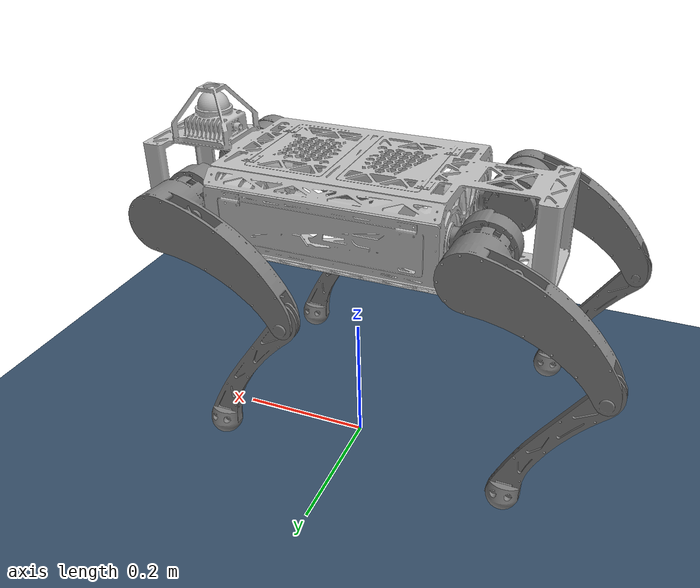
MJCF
<mujoco model="dog_v2_2_4">
  <compiler angle="radian" autolimits="true" eulerseq="zyx" meshdir="meshes"/>
  <option gravity='0 0 -9.81'>
    <flag frictionloss="enable"/>
  </option>
  <size njmax="500" nconmax="100" />

  <default>
    <joint limited='true'/>
    <motor ctrllimited='true'/>
    <geom condim='1' contype="1" conaffinity="0" friction='0.6 0.2 0.2'/>
    <default class='leg_joint_param'>
      <joint damping="0.5" frictionloss="0.01" armature="0.01"/>
    </default>
    <default class="foot_collision">
      <geom type="sphere" size="0.02" condim="6" friction="10.0 0.05 0.01"/>
    </default>
  </default>

  <asset>
    <hfield name="terrain" nrow="100" ncol="100" size="50 50 0.5 0.1"/>
    <mesh name="base_link" file="base_link.STL"/>
    <mesh name="LF_HipA_link" file="LF_HipA_link.STL"/>
    <mesh name="LF_HipF_link" file="LF_HipF_link.STL"/>
    <mesh name="LF_Knee_link" file="LF_Knee_link.STL"/>
    <mesh name="LF_Foot_link" file="LF_Foot_link.STL"/>
    <mesh name="LR_HipA_link" file="LR_HipA_link.STL"/>
    <mesh name="LR_HipF_link" file="LR_HipF_link.STL"/>
    <mesh name="LR_Knee_link" file="LR_Knee_link.STL"/>
    <mesh name="LR_Foot_link" file="LR_Foot_link.STL"/>
    <mesh name="RF_HipA_link" file="RF_HipA_link.STL"/>
    <mesh name="RF_HipF_link" file="RF_HipF_link.STL"/>
    <mesh name="RF_Knee_link" file="RF_Knee_link.STL"/>
    <mesh name="RF_Foot_link" file="RF_Foot_link.STL"/>
    <mesh name="RR_HipA_link" file="RR_HipA_link.STL"/>
    <mesh name="RR_HipF_link" file="RR_HipF_link.STL"/>
    <mesh name="RR_Knee_link" file="RR_Knee_link.STL"/>
    <mesh name="RR_Foot_link" file="RR_Foot_link.STL"/>
  </asset>

  <worldbody>
    <light directional="true" diffuse=".4 .4 .4" pos="0 0 5.0" dir="0 0 -1"/>
    <geom name="floor" type="plane" size="50 50 0.1" condim="3" friction="1.0 0.2 0.2" conaffinity="1" rgba="0.2 0.3 0.4 1"/>

    <body name="base_link" pos="0 0 0.35">
      <freejoint name="floating_base"/>
      <inertial pos="0.003073 -0.000011 0.058211" mass="5.276437" fullinertia="0.032842099924 0.103762167556 0.116538404566 0.00003336928 -0.007254554244 0.00003335365"/>

      <site name='imu' size='0.01' pos='0 0 0'/>
      <geom type="mesh" mesh="base_link" rgba="0.75 0.75 0.75 1" contype="0" conaffinity="0" group="1"/>

      <body name="LF_HipA_link" pos="0.16 0.0675 0.063" quat="0.5 0.5 0.5 0.5">
        <inertial pos="0.002621 0.000052 0.046852" mass="0.452382" fullinertia="0.00055866874 0.000347032635 0.000308951038 0.000000341744 -0.000000708495 -0.000000091476"/>
        <joint name="LF_HipA_joint" axis="0 0 1" range="-0.7853982 0.7853982" class="leg_joint_param"/>
        <geom type="mesh" mesh="LF_HipA_link"/>

        <body name="LF_HipF_link" pos="0.018 0 0.048" quat="0.707 0 0.707 0">
          <inertial pos="0.033261 -0.016881 0.050217" mass="0.779164" fullinertia="0.001597433226 0.003268376129 0.004330433943 0.001505087455 -0.000442930553 0.000224661879"/>
          <joint name="LF_HipF_joint" axis="0 0 1" range="-1.2217658 0.8726683" class="leg_joint_param"/>
          <geom type="mesh" mesh="LF_HipF_link"/>

          <body name="LF_Knee_link" pos="0.1707 -0.1222 0.05">
            <inertial pos="-0.055107 -0.080197 0.016515" mass="0.121558" fullinertia="0.000549292448 0.000223695708 0.000769619177 -0.000333360171 -0.000000107893 -0.000000188213"/>
            <joint name="LF_Knee_joint" axis="0 0 1" range="-1.2217299 0.69813" class="leg_joint_param"/>
            <geom type="mesh" mesh="LF_Knee_link"/>
            <site name="LF_foot_site" pos="-0.11 -0.19 0.016" size="0.01"/>
            <geom name="LF_foot_visual" type="mesh" mesh="LF_Foot_link" pos="-0.11 -0.19 0.016" quat="0 0 0.707 0.707"
                  contype="0" conaffinity="0" group="1"/>
            <geom name="LF_foot_collision" class="foot_collision" pos="-0.11 -0.19 0.016" rgba="0 0 0 0"/>
          </body>
        </body>
      </body>

      <body name="LR_HipA_link" pos="-0.16 0.0675 0.063" quat="0.5 0.5 -0.5 -0.5">
        <inertial pos="-0.002621 -0.000052 0.046852" mass="0.452382" fullinertia="0.00055866874 0.000347032635 0.000308951038 0.000000341744 0.000000708495 0.000000091476"/>
        <joint name="LR_HipA_joint" axis="0 0 1" range="-0.7853982 0.7853982" class="leg_joint_param"/>
        <geom type="mesh" mesh="LR_HipA_link"/>

        <body name="LR_HipF_link" pos="-0.018 0 0.048" quat="0.707 0 -0.707 0">
          <inertial pos="0.03326 -0.016881 0.050217" mass="0.779164" fullinertia="0.001597433226 0.003268376129 0.004330433943 0.001505087455 -0.000442930553 0.000224661879"/>
          <joint name="LR_HipF_joint" axis="0 0 1" range="-1.2217305 0.8726683" class="leg_joint_param"/>
          <geom type="mesh" mesh="LR_HipF_link"/>

          <body name="LR_Knee_link" pos="0.1707 -0.1222 0.05">
            <inertial pos="-0.055107 -0.080197 0.016515" mass="0.121558" fullinertia="0.000549292448 0.000223695708 0.000769619177 -0.000333360171 -0.000000107893 -0.000000188213"/>
            <joint name="LR_Knee_joint" axis="0 0 1" range="-1.2217299 0.69813" class="leg_joint_param"/>
            <geom type="mesh" mesh="LR_Knee_link"/>
            <site name="LR_foot_site" pos="-0.11 -0.19 0.016" size="0.01"/>
            <geom name="LR_foot_visual" type="mesh" mesh="LR_Foot_link" pos="-0.11 -0.19 0.016" quat="0 0 -0.707 -0.707"
                  contype="0" conaffinity="0" group="1"/>
            <geom name="LR_foot_collision" class="foot_collision" pos="-0.11 -0.19 0.016" rgba="0 0 0 0"/>
          </body>
        </body>
      </body>

      <body name="RF_HipA_link" pos="0.16 -0.0675 0.063" quat="0.5 0.5 0.5 0.5">
        <inertial pos="-0.002621 -0.000052 0.046852" mass="0.452382" fullinertia="0.00055866874 0.000347032635 0.000308951038 0.000000341744 0.000000708495 0.000000091476"/>
        <joint name="RF_HipA_joint" axis="0 0 1" range="-0.7853982 0.7853982" class="leg_joint_param"/>
        <geom type="mesh" mesh="RF_HipA_link"/>

        <body name="RF_HipF_link" pos="-0.018 0 0.048" quat="0.707 0 -0.707 0">
          <inertial pos="-0.033247 -0.016939 0.050217" mass="0.779164" fullinertia="0.001595827327 0.00326915934 0.004329611254 -0.001503634909 0.000443182676 0.000223603548"/>
          <joint name="RF_HipF_joint" axis="0 0 1" range="-0.8726999 1.2217342" class="leg_joint_param"/>
          <geom type="mesh" mesh="RF_HipF_link"/>

          <body name="RF_Knee_link" pos="-0.1707 -0.1222 0.05">
            <inertial pos="0.055107 -0.080197 0.016485" mass="0.121558" fullinertia="0.000549292448 0.000223695708 0.000769619177 0.000333360171 -0.000000107893 0.000000188213"/>
            <joint name="RF_Knee_joint" axis="0 0 1" range="-0.6981312 1.2217287" class="leg_joint_param"/>
            <geom type="mesh" mesh="RF_Knee_link"/>
            <site name="RF_foot_site" pos="0.11 -0.19 0.016" size="0.01"/>
            <geom name="RF_foot_visual" type="mesh" mesh="RF_Foot_link" pos="0.11 -0.19 0.016" quat="0.707 -0.707 0 0"
                  contype="0" conaffinity="0" group="1"/>
            <geom name="RF_foot_collision" class="foot_collision" pos="0.11 -0.19 0.016" rgba="0 0 0 0"/>
          </body>
        </body>
      </body>

      <body name="RR_HipA_link" pos="-0.16 -0.0675 0.063" quat="0.5 0.5 -0.5 -0.5">
        <inertial pos="0.002621 0.000052 0.046852" mass="0.452382" fullinertia="0.00055866874 0.000347032635 0.000308951038 0.000000341744 -0.000000708495 -0.000000091476"/>
        <joint name="RR_HipA_joint" axis="0 0 1" range="-0.7853982 0.7853982" class="leg_joint_param"/>
        <geom type="mesh" mesh="RR_HipA_link"/>

        <body name="RR_HipF_link" pos="0.018 0 0.048" quat="0.707 0 0.707 0">
          <inertial pos="-0.033246 -0.01694 0.050217" mass="0.779164" fullinertia="0.001595827327 0.00326915934 0.004329611254 -0.001503634909 0.000443182676 0.000223603548"/>
          <joint name="RR_HipF_joint" axis="0 0 1" range="-0.8726999 1.2217305" class="leg_joint_param"/>
          <geom type="mesh" mesh="RR_HipF_link"/>

          <body name="RR_Knee_link" pos="-0.1707 -0.1222 0.05">
            <inertial pos="0.055107 -0.080197 0.016485" mass="0.121558" fullinertia="0.000549292448 0.000223695708 0.000769619177 0.000333360171 -0.000000107893 0.000000188213"/>
            <joint name="RR_Knee_joint" axis="0 0 1" range="-0.6981312 1.2217287" class="leg_joint_param"/>
            <geom type="mesh" mesh="RR_Knee_link"/>
            <site name="RR_foot_site" pos="0.11 -0.19 0.016" size="0.01"/>
            <geom name="RR_foot_visual" type="mesh" mesh="RR_Foot_link" pos="0.11 -0.19 0.016" quat="0.707 -0.707 0 0"
                  contype="0" conaffinity="0" group="1"/>
            <geom name="RR_foot_collision" class="foot_collision" pos="0.11 -0.19 0.016" rgba="0 0 0 0"/>
          </body>
        </body>
      </body>
    </body>
  </worldbody>

  <actuator>
    <motor name="LF_HipA" joint="LF_HipA_joint" gear="1" ctrllimited="true" ctrlrange="-17 17"/>
    <motor name="LF_HipF" joint="LF_HipF_joint" gear="1" ctrllimited="true" ctrlrange="-17 17"/>
    <motor name="LF_Knee" joint="LF_Knee_joint" gear="1" ctrllimited="true" ctrlrange="-25 25"/>

    <motor name="LR_HipA" joint="LR_HipA_joint" gear="1" ctrllimited="true" ctrlrange="-17 17"/>
    <motor name="LR_HipF" joint="LR_HipF_joint" gear="1" ctrllimited="true" ctrlrange="-17 17"/>
    <motor name="LR_Knee" joint="LR_Knee_joint" gear="1" ctrllimited="true" ctrlrange="-25 25"/>

    <motor name="RF_HipA" joint="RF_HipA_joint" gear="1" ctrllimited="true" ctrlrange="-17 17"/>
    <motor name="RF_HipF" joint="RF_HipF_joint" gear="1" ctrllimited="true" ctrlrange="-17 17"/>
    <motor name="RF_Knee" joint="RF_Knee_joint" gear="1" ctrllimited="true" ctrlrange="-25 25"/>

    <motor name="RR_HipA" joint="RR_HipA_joint" gear="1" ctrllimited="true" ctrlrange="-17 17"/>
    <motor name="RR_HipF" joint="RR_HipF_joint" gear="1" ctrllimited="true" ctrlrange="-17 17"/>
    <motor name="RR_Knee" joint="RR_Knee_joint" gear="1" ctrllimited="true" ctrlrange="-25 25"/>
  </actuator>

  <sensor>
    <jointpos name="LF_HipA_pos" joint="LF_HipA_joint"/>
    <jointpos name="LF_HipF_pos" joint="LF_HipF_joint"/>
    <jointpos name="LF_Knee_pos" joint="LF_Knee_joint"/>
    <jointpos name="LR_HipA_pos" joint="LR_HipA_joint"/>
    <jointpos name="LR_HipF_pos" joint="LR_HipF_joint"/>
    <jointpos name="LR_Knee_pos" joint="LR_Knee_joint"/>
    <jointpos name="RF_HipA_pos" joint="RF_HipA_joint"/>
    <jointpos name="RF_HipF_pos" joint="RF_HipF_joint"/>
    <jointpos name="RF_Knee_pos" joint="RF_Knee_joint"/>
    <jointpos name="RR_HipA_pos" joint="RR_HipA_joint"/>
    <jointpos name="RR_HipF_pos" joint="RR_HipF_joint"/>
    <jointpos name="RR_Knee_pos" joint="RR_Knee_joint"/>

    <jointvel name="LF_HipA_vel" joint="LF_HipA_joint"/>
    <jointvel name="LF_HipF_vel" joint="LF_HipF_joint"/>
    <jointvel name="LF_Knee_vel" joint="LF_Knee_joint"/>
    <jointvel name="LR_HipA_vel" joint="LR_HipA_joint"/>
    <jointvel name="LR_HipF_vel" joint="LR_HipF_joint"/>
    <jointvel name="LR_Knee_vel" joint="LR_Knee_joint"/>
    <jointvel name="RF_HipA_vel" joint="RF_HipA_joint"/>
    <jointvel name="RF_HipF_vel" joint="RF_HipF_joint"/>
    <jointvel name="RF_Knee_vel" joint="RF_Knee_joint"/>
    <jointvel name="RR_HipA_vel" joint="RR_HipA_joint"/>
    <jointvel name="RR_HipF_vel" joint="RR_HipF_joint"/>
    <jointvel name="RR_Knee_vel" joint="RR_Knee_joint"/>

    <jointactuatorfrc name="LF_HipA_torque" joint="LF_HipA_joint"/>
    <jointactuatorfrc name="LF_HipF_torque" joint="LF_HipF_joint"/>
    <jointactuatorfrc name="LF_Knee_torque" joint="LF_Knee_joint"/>
    <jointactuatorfrc name="LR_HipA_torque" joint="LR_HipA_joint"/>
    <jointactuatorfrc name="LR_HipF_torque" joint="LR_HipF_joint"/>
    <jointactuatorfrc name="LR_Knee_torque" joint="LR_Knee_joint"/>
    <jointactuatorfrc name="RF_HipA_torque" joint="RF_HipA_joint"/>
    <jointactuatorfrc name="RF_HipF_torque" joint="RF_HipF_joint"/>
    <jointactuatorfrc name="RF_Knee_torque" joint="RF_Knee_joint"/>
    <jointactuatorfrc name="RR_HipA_torque" joint="RR_HipA_joint"/>
    <jointactuatorfrc name="RR_HipF_torque" joint="RR_HipF_joint"/>
    <jointactuatorfrc name="RR_Knee_torque" joint="RR_Knee_joint"/>

    <framequat name="orientation" objtype="site" objname="imu"/>
    <gyro name="angular-velocity" site="imu"/>
    <accelerometer name="linear-acceleration" site="imu"/>
    <framepos name="position" objtype="site" objname="imu"/>
  </sensor>
</mujoco>
